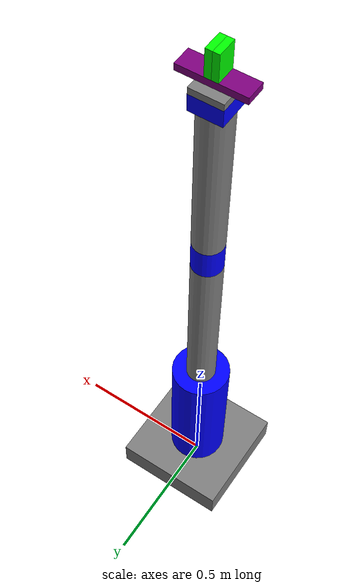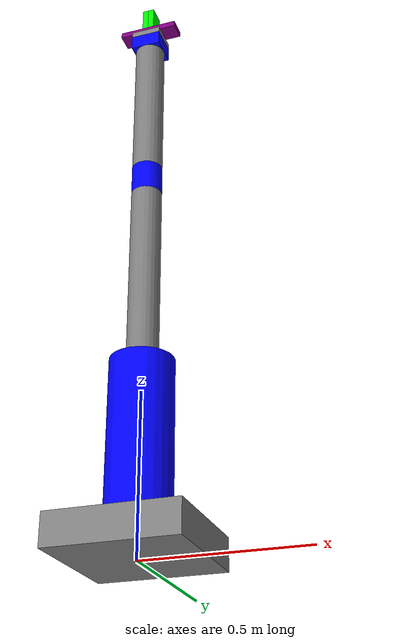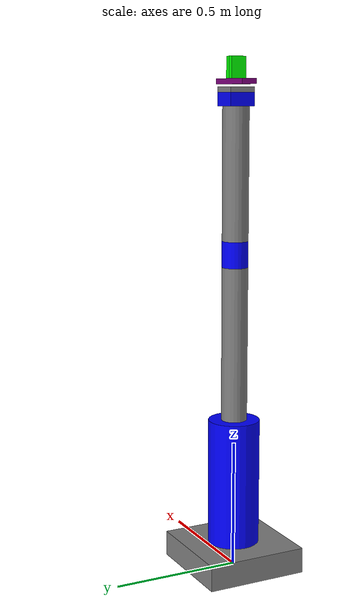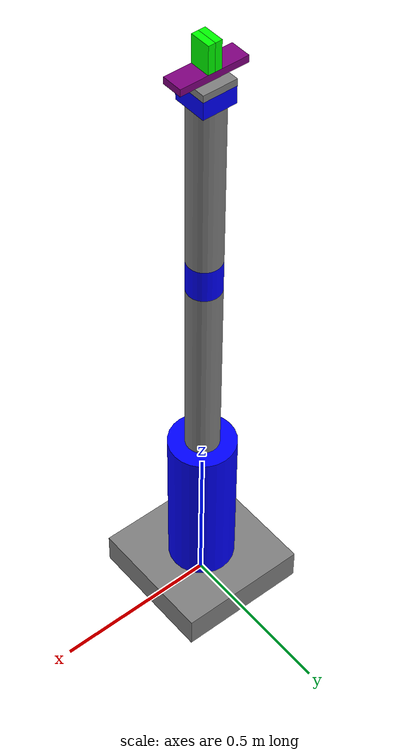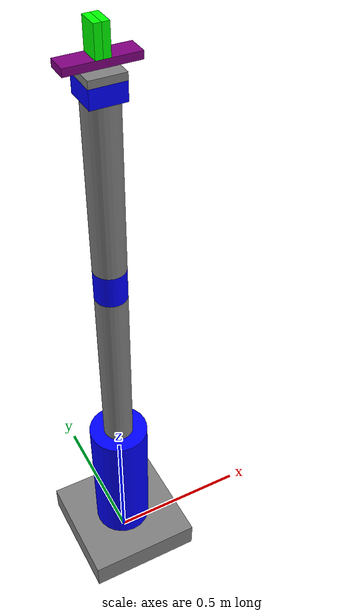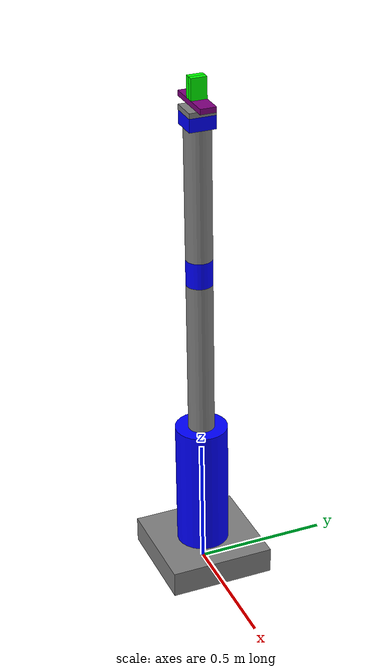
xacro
<?xml version="1.0"?>
<robot name="my_robot" xmlns:xacro="http://www.ros.org/wiki/xacro">

    <xacro:include filename="common_properties.xacro" />
    <xacro:include filename="arm.xacro" />
    <xacro:include filename="gripper.xacro" />
    <xacro:include filename="my_robot.ros2_control.xacro" />

    <!-- 把夹爪固定到机械臂末端的 tool_link 上 -->
    <joint name="tool_gripper_joint" type="fixed">
        <parent link="tool_link"/>
        <child link="gripper_base_link"/>
        <origin xyz="0 0 0.01" rpy="0 0 0"/>
    </joint>

</robot>

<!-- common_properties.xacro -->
<robot name="my_robot" xmlns:xacro="http://www.ros.org/wiki/xacro">

    <material name="grey">
        <color rgba="0.5 0.5 0.5 1"/>
    </material>

    <material name="blue">
        <color rgba="0.0 0.0 1.0 1"/>
    </material>

    <material name="red">
        <color rgba="1.0 0.0 0.0 1"/>
    </material>

    <material name="green">
        <color rgba="0.0 1.0 0.0 1"/>
    </material>

    <material name="yellow">
        <color rgba="1.0 1.0 0.0 1"/>
    </material>

    <material name="purple">
        <color rgba="0.5 0.0 0.5 1"/>
    </material>

    <material name="orange">
        <color rgba="1.0 0.5 0.0 1"/>
    </material>
</robot>

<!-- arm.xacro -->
<robot>

    <link name="base_link">
        <visual>
            <geometry>
                <box size="0.4 0.4 0.1"/>
            </geometry>
            <origin xyz="0 0 0.05" rpy="0 0 0"/>
            <material name="grey"/>
        </visual>
        <collision>
            <geometry>
                <box size="0.4 0.4 0.1"/>
            </geometry>
            <origin xyz="0 0 0.05" rpy="0 0 0"/>
        </collision>
    </link>

    <link name="shoulder_link">
        <visual>
            <geometry>
                <cylinder radius="0.1" length="0.5"/>
            </geometry>
            <origin xyz="0 0 0.25" rpy="0 0 0"/>
            <material name="blue"/>
        </visual>
        <collision>
            <geometry>
                <box size="0.2 0.2 0.5"/>
            </geometry>
            <origin xyz="0 0 0.25" rpy="0 0 0"/>
        </collision>
    </link>

    <link name="arm_link">
        <visual>
            <geometry>
                <cylinder radius="0.05" length="0.6"/>
            </geometry>
            <origin xyz="0 0 0.3" rpy="0 0 0"/>
            <material name="grey"/>
        </visual>
        <collision>
            <geometry>
                <box size="0.1 0.1 0.6"/>
            </geometry>
            <origin xyz="0 0 0.3" rpy="0 0 0"/>
        </collision>
    </link>

    <link name="elbow_link">
        <visual>
            <geometry>
                <cylinder radius="0.05" length="0.1"/>
            </geometry>
            <origin xyz="0 0 0.05" rpy="0 0 0"/>
            <material name="blue"/>
        </visual>
        <collision>
            <geometry>
                <box size="0.1 0.1 0.1"/>
            </geometry>
            <origin xyz="0 0 0.05" rpy="0 0 0"/>
        </collision>
    </link>

    <link name="forearm_link">
        <visual>
            <geometry>
                <cylinder radius="0.05" length="0.5"/>
            </geometry>
            <origin xyz="0 0 0.25" rpy="0 0 0"/>
            <material name="grey"/>
        </visual>
        <collision>
            <geometry>
                <box size="0.1 0.1 0.5"/>
            </geometry>
            <origin xyz="0 0 0.25" rpy="0 0 0"/>
        </collision>
    </link>

    <link name="wrist_link">
        <visual>
            <geometry>
                <box size="0.1 0.1 0.05"/>
            </geometry>
            <origin xyz="0 0 0.025" rpy="0 0 0"/>
            <material name="blue"/>
        </visual>
        <collision>
            <geometry>
                <box size="0.1 0.1 0.05"/>
            </geometry>
            <origin xyz="0 0 0.025" rpy="0 0 0"/>
        </collision>
    </link>

    <link name="hand_link">
        <visual>
            <geometry>
                <box size="0.1 0.1 0.02"/>
            </geometry>
            <origin xyz="0 0 0.01" rpy="0 0 0"/>
            <material name="grey"/>
        </visual>
        <collision>
            <geometry>
                <box size="0.1 0.1 0.02"/>
            </geometry>
            <origin xyz="0 0 0.01" rpy="0 0 0"/>
        </collision>
    </link>

    <link name="tool_link"/>

    <joint name="joint_1" type="revolute">
        <parent link="base_link"/>
        <child link="shoulder_link"/>
        <origin xyz="0 0 0.1" rpy="0 0 0"/>
        <axis xyz="0 0 1"/>
        <limit lower="-3.14" upper="3.14" effort="1000.0" velocity="1.0"/>
    </joint>

    <joint name="joint_2" type="revolute">
        <parent link="shoulder_link"/>
        <child link="arm_link"/>
        <origin xyz="0 0 0.5" rpy="0 0 0"/>
        <axis xyz="0 1 0"/>
        <limit lower="0" upper="2.5" effort="1000.0" velocity="1.0"/>
    </joint>

    <joint name="joint_3" type="revolute">
        <parent link="arm_link"/>
        <child link="elbow_link"/>
        <origin xyz="0 0 0.6" rpy="0 0 0"/>
        <axis xyz="0 1 0"/>
        <limit lower="0" upper="2.5" effort="1000.0" velocity="1.0"/>
    </joint>

    <joint name="joint_4" type="revolute">
        <parent link="elbow_link"/>
        <child link="forearm_link"/>
        <origin xyz="0 0 0.1" rpy="0 0 0"/>
        <axis xyz="0 0 1"/>
        <limit lower="-3.14" upper="3.14" effort="1000.0" velocity="1.0"/>
    </joint>

    <joint name="joint_5" type="revolute">
        <parent link="forearm_link"/>
        <child link="wrist_link"/>
        <origin xyz="0 0 0.5" rpy="0 0 0"/>
        <axis xyz="0 1 0"/>
        <limit lower="-1.57" upper="1.57" effort="1000.0" velocity="1.0"/>
    </joint>

    <joint name="joint_6" type="continuous">
        <parent link="wrist_link"/>
        <child link="hand_link"/>
        <origin xyz="0 0 0.05" rpy="0 0 0"/>
        <axis xyz="0 0 1"/>
    </joint>

    <joint name="hand_tool_joint" type="fixed">
        <parent link="hand_link"/>
        <child link="tool_link"/>
        <origin xyz="0 0 0.02" rpy="0 0 0"/>
    </joint>

</robot>

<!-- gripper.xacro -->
<robot name="gripper" xmlns:xacro="http://www.ros.org/wiki/xacro">

    <!-- ========== 底座 ========== -->
    <link name="gripper_base_link">
        <visual>
            <geometry>
                <box size="0.2 0.06 0.02"/>
            </geometry>
            <origin xyz="0 0 0.01" rpy="0 0 0"/>
            <material name="purple"/>
        </visual>
        <collision>
            <geometry>
                <box size="0.2 0.06 0.02"/>
            </geometry>
            <origin xyz="0 0 0.01" rpy="0 0 0"/>
        </collision>
    </link>

    <!-- ========== 左手指 ========== -->
    <link name="left_finger_link">
        <visual>
            <geometry>
                <box size="0.02 0.06 0.08"/>
            </geometry>
            <origin xyz="0 0 0.04" rpy="0 0 0"/>
            <material name="green"/>
        </visual>
        <collision>
            <geometry>
                <box size="0.02 0.06 0.08"/>
            </geometry>
            <origin xyz="0 0 0.04" rpy="0 0 0"/>
        </collision>
    </link>

    <!-- ========== 右手指 ========== -->
    <link name="right_finger_link">
        <visual>
            <geometry>
                <box size="0.02 0.06 0.08"/>
            </geometry>
            <origin xyz="0 0 0.04" rpy="0 0 0"/>  <!-- -0.005（半宽） -->
            <material name="green"/>
        </visual>
        <collision>
            <geometry>
                <box size="0.02 0.06 0.08"/>
            </geometry>
            <origin xyz="0 0 0.04" rpy="0 0 0"/>
        </collision>
    </link>

    <!-- ========== 左关节（沿X正方向张开） ========== -->
    <joint name="left_finger_joint" type="prismatic">
        <parent link="gripper_base_link"/>
        <child link="left_finger_link"/>
        <origin xyz="0.01 0 0.02" rpy="0 0 0"/>
        <axis xyz="1 0 0"/>
        <limit velocity="0.5" effort="100" lower="0" upper="0.06"/>
    </joint>

    <!-- ========== 右关节（沿X负方向张开，镜像对称） ========== -->
    <joint name="right_finger_joint" type="prismatic">
        <parent link="gripper_base_link"/>
        <child link="right_finger_link"/>
        <origin xyz="-0.01 0 0.02" rpy="0 0 0"/>
        <axis xyz="-1 0 0"/>
        <limit velocity="0.5" effort="100" lower="0" upper="0.06"/>
        <mimic joint="left_finger_joint" multiplier="1" offset="0"/>
    </joint>

</robot>
